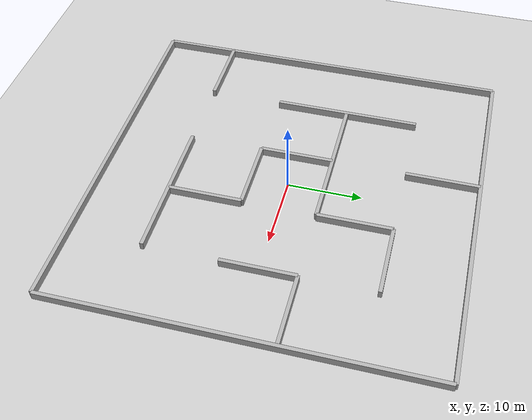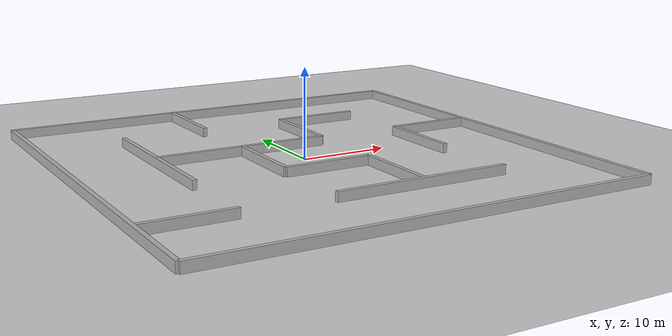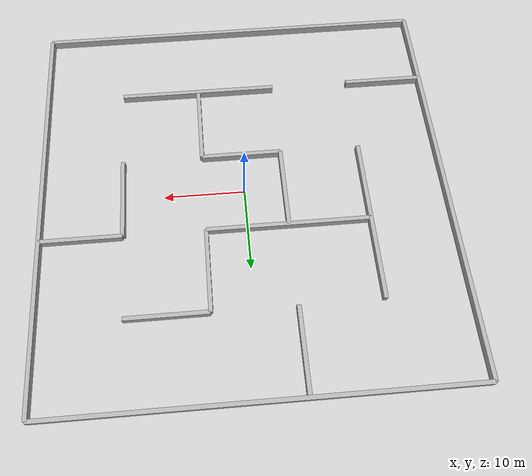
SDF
<?xml version="1.0"?>
<sdf version="1.7">
  <world name="world">

    <!-- 1. 重力 -->
    <gravity>0 0 -9.8</gravity>

    <!-- 2. 光照（一般直接引用 sun 模型） -->
    <include>
      <uri>model://sun</uri>
    </include>

    <!-- 3. 地面 -->
    <model name="ground">
      <static>true</static>
      <link name="link">
        <collision name="collision">
          <geometry><plane><normal>0 0 1</normal><size>50 50</size></plane></geometry>
        </collision>
        <visual name="visual">
          <geometry><plane><normal>0 0 1</normal><size>50 50</size></plane></geometry>
        </visual>
      </link>
    </model>

    <!-- 4. 其他模型（机器人、障碍物...） -->
    <model name="wall_x+">
      <static>true</static>
      <pose> 25 0 0 0 0 0</pose>
      <link name="link">
        <collision name="collision">
          <geometry>
            <box><size>0.5 50 2</size></box>
          </geometry>
        </collision>
        <visual name="visual">
          <geometry>
            <box><size>0.5 50 2</size></box>
          </geometry>
          <material>
            <ambient>0.5 0.5 0.5 1</ambient>
            <diffuse>0.7 0.7 0.7 1</diffuse>
          </material>
        </visual>
      </link>
    </model>

     <model name="wall_x-">
      <static>true</static>
      <pose> -25 0 0 0 0 0</pose>
      <link name="link">
        <collision name="collision">
          <geometry>
            <box><size>0.5 50 2</size></box>
          </geometry>
        </collision>
        <visual name="visual">
          <geometry>
            <box><size>0.5 50 2</size></box>
          </geometry>
          <material>
            <ambient>0.5 0.5 0.5 1</ambient>
            <diffuse>0.7 0.7 0.7 1</diffuse>
          </material>
        </visual>
      </link>
    </model>

     <model name="wall_y+">
      <static>true</static>
      <pose> 0 25 0 0 0 0</pose>
      <link name="link">
        <collision name="collision">
          <geometry>
            <box><size>50 0.5 2</size></box>
          </geometry>
        </collision>
        <visual name="visual">
          <geometry>
            <box><size>50 0.5 2</size></box>
          </geometry>
          <material>
            <ambient>0.5 0.5 0.5 1</ambient>
            <diffuse>0.7 0.7 0.7 1</diffuse>
          </material>
        </visual>
      </link>
    </model>

     <model name="wall_y-">
      <static>true</static>
      <pose> 0 -25 0 0 0 0</pose>
      <link name="link">
        <collision name="collision">
          <geometry>
            <box><size>50 0.5 2</size></box>
          </geometry>
        </collision>
        <visual name="visual">
          <geometry>
            <box><size>50 0.5 2</size></box>
          </geometry>
          <material>
            <ambient>0.5 0.5 0.5 1</ambient>
            <diffuse>0.7 0.7 0.7 1</diffuse>
          </material>
        </visual>
      </link>
    </model>

    <model name="wall_x1">
      <static>true</static>
      <pose> -20 -15 0 0 0 0</pose>
      <link name="link">
        <collision name="collision">
          <geometry>
            <box><size>10 0.5 2</size></box>
          </geometry>
        </collision>
        <visual name="visual">
          <geometry>
            <box><size>10 0.5 2</size></box>
          </geometry>
          <material>
            <ambient>0.5 0.5 0.5 1</ambient>
            <diffuse>0.7 0.7 0.7 1</diffuse>
          </material>
        </visual>
      </link>
    </model>

    <model name="wall_x2">
      <static>true</static>
      <pose> 5 -15 0 0 0 0</pose>
      <link name="link">
        <collision name="collision">
          <geometry>
            <box><size>20 0.5 2</size></box>
          </geometry>
        </collision>
        <visual name="visual">
          <geometry>
            <box><size>20 0.5 2</size></box>
          </geometry>
          <material>
            <ambient>0.5 0.5 0.5 1</ambient>
            <diffuse>0.7 0.7 0.7 1</diffuse>
          </material>
        </visual>
      </link>
    </model>

    <model name="wall_x3">
      <static>true</static>
      <pose> 0 -5 0 0 0 0</pose>
      <link name="link">
        <collision name="collision">
          <geometry>
            <box><size>10 0.5 2</size></box>
          </geometry>
        </collision>
        <visual name="visual">
          <geometry>
            <box><size>10 0.5 2</size></box>
          </geometry>
          <material>
            <ambient>0.5 0.5 0.5 1</ambient>
            <diffuse>0.7 0.7 0.7 1</diffuse>
          </material>
        </visual>
      </link>
    </model>

    <model name="wall_x4">
      <static>true</static>
      <pose> -5 5 0 0 0 0</pose>
      <link name="link">
        <collision name="collision">
          <geometry>
            <box><size>20 0.5 2</size></box>
          </geometry>
        </collision>
        <visual name="visual">
          <geometry>
            <box><size>20 0.5 2</size></box>
          </geometry>
          <material>
            <ambient>0.5 0.5 0.5 1</ambient>
            <diffuse>0.7 0.7 0.7 1</diffuse>
          </material>
        </visual>
      </link>
    </model>

    <model name="wall_x5">
      <static>true</static>
      <pose> 20 5 0 0 0 0</pose>
      <link name="link">
        <collision name="collision">
          <geometry>
            <box><size>10 0.5 2</size></box>
          </geometry>
        </collision>
        <visual name="visual">
          <geometry>
            <box><size>10 0.5 2</size></box>
          </geometry>
          <material>
            <ambient>0.5 0.5 0.5 1</ambient>
            <diffuse>0.7 0.7 0.7 1</diffuse>
          </material>
        </visual>
      </link>
    </model>

    <model name="wall_x6">
      <static>true</static>
      <pose> 10 15 0 0 0 0</pose>
      <link name="link">
        <collision name="collision">
          <geometry>
            <box><size>10 0.5 2</size></box>
          </geometry>
        </collision>
        <visual name="visual">
          <geometry>
            <box><size>10 0.5 2</size></box>
          </geometry>
          <material>
            <ambient>0.5 0.5 0.5 1</ambient>
            <diffuse>0.7 0.7 0.7 1</diffuse>
          </material>
        </visual>
      </link>
    </model>

    <model name="wall_y1">
      <static>true</static>
      <pose> -15 5 0 0 0 0</pose>
      <link name="link">
        <collision name="collision">
          <geometry>
            <box><size>0.5 20 2</size></box>
          </geometry>
        </collision>
        <visual name="visual">
          <geometry>
            <box><size>0.5 20 2</size></box>
          </geometry>
          <material>
            <ambient>0.5 0.5 0.5 1</ambient>
            <diffuse>0.7 0.7 0.7 1</diffuse>
          </material>
        </visual>
      </link>
    </model>

    <model name="wall_y2">
      <static>true</static>
      <pose> -5 0 0 0 0 0</pose>
      <link name="link">
        <collision name="collision">
          <geometry>
            <box><size>0.5 10 2</size></box>
          </geometry>
        </collision>
        <visual name="visual">
          <geometry>
            <box><size>0.5 10 2</size></box>
          </geometry>
          <material>
            <ambient>0.5 0.5 0.5 1</ambient>
            <diffuse>0.7 0.7 0.7 1</diffuse>
          </material>
        </visual>
      </link>
    </model>

    <model name="wall_y3">
      <static>true</static>
      <pose> -5 20 0 0 0 0</pose>
      <link name="link">
        <collision name="collision">
          <geometry>
            <box><size>0.5 10 2</size></box>
          </geometry>
        </collision>
        <visual name="visual">
          <geometry>
            <box><size>0.5 10 2</size></box>
          </geometry>
          <material>
            <ambient>0.5 0.5 0.5 1</ambient>
            <diffuse>0.7 0.7 0.7 1</diffuse>
          </material>
        </visual>
      </link>
    </model>

    <model name="wall_y4">
      <static>true</static>
      <pose> 5 -10 0 0 0 0</pose>
      <link name="link">
        <collision name="collision">
          <geometry>
            <box><size>0.5 10 2</size></box>
          </geometry>
        </collision>
        <visual name="visual">
          <geometry>
            <box><size>0.5 10 2</size></box>
          </geometry>
          <material>
            <ambient>0.5 0.5 0.5 1</ambient>
            <diffuse>0.7 0.7 0.7 1</diffuse>
          </material>
        </visual>
      </link>
    </model>

    <model name="wall_y5">
      <static>true</static>
      <pose> 5 10 0 0 0 0</pose>
      <link name="link">
        <collision name="collision">
          <geometry>
            <box><size>0.5 10 2</size></box>
          </geometry>
        </collision>
        <visual name="visual">
          <geometry>
            <box><size>0.5 10 2</size></box>
          </geometry>
          <material>
            <ambient>0.5 0.5 0.5 1</ambient>
            <diffuse>0.7 0.7 0.7 1</diffuse>
          </material>
        </visual>
      </link>
    </model>

    <model name="wall_y6">
      <static>true</static>
      <pose> 15 0 0 0 0 0</pose>
      <link name="link">
        <collision name="collision">
          <geometry>
            <box><size>0.5 10 2</size></box>
          </geometry>
        </collision>
        <visual name="visual">
          <geometry>
            <box><size>0.5 10 2</size></box>
          </geometry>
          <material>
            <ambient>0.5 0.5 0.5 1</ambient>
            <diffuse>0.7 0.7 0.7 1</diffuse>
          </material>
        </visual>
      </link>
    </model>

  </world>
</sdf>
